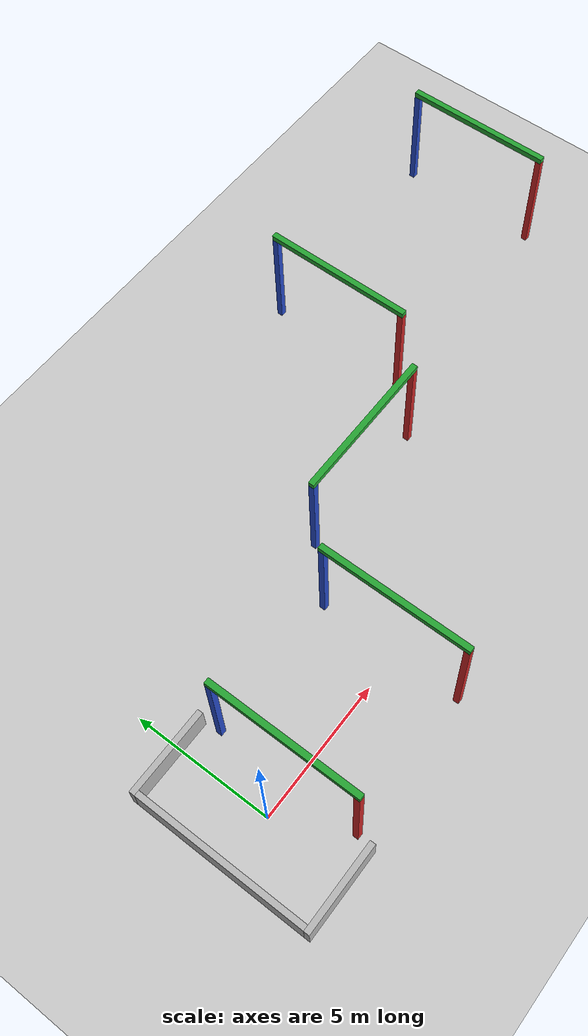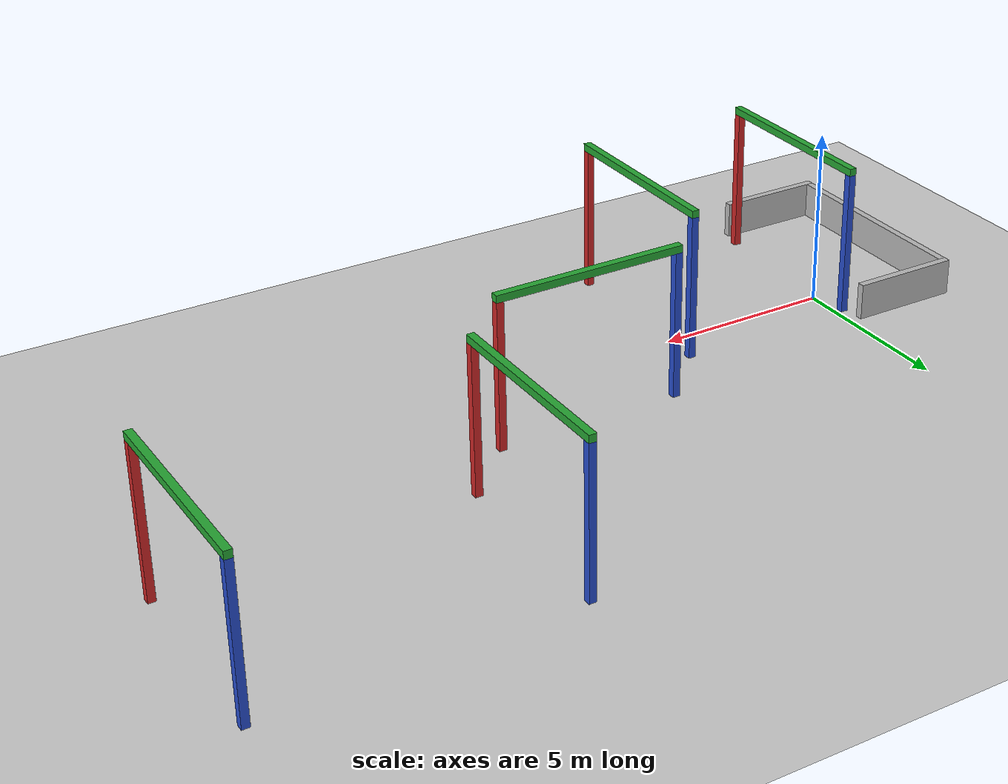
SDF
<sdf version="1.4">
 <world name="qual_task_1">
  <physics type="ode">
   <gravity>0 0 -9.81</gravity>
   <ode>
    <solver><type>quick</type><iters>50</iters><sor>1.4</sor></solver>
    <constraints>
     <cfm>0.0</cfm>
     <erp>0.2</erp>
     <contact_max_correcting_vel>100.0</contact_max_correcting_vel>
     <contact_surface_layer>0.0</contact_surface_layer>
    </constraints>
   </ode>
   <real_time_update_rate>1000</real_time_update_rate>
   <max_step_size>0.001</max_step_size>
  </physics>
  <scene><ambient>0.3 0.3 0.3 1.0</ambient></scene>
  <light type="directional" name="sun">
   <pose>0 0 100 0 0 0</pose>
   <diffuse>0.9 0.9 0.9 1</diffuse>
   <specular>0.1 0.1 0.1 1</specular>
   <attenuation>
    <range>1000</range>
    <constant>0.9</constant>
    <linear>0.01</linear>
    <quadratic>0.001</quadratic>
   </attenuation>
   <direction>-0.2 0.0 -1.0</direction>
  </light>
  <light type="point" name="light_bulb">
   <cast_shadows>false</cast_shadows>
   <pose>7.5 -7 5 0 0 0</pose>
   <diffuse>0.5 0.5 0.5 1</diffuse>
   <specular>0.0 0.0 0.0 1</specular>
   <attenuation>
    <range>80</range>
    <constant>0.9</constant>
    <linear>0.01</linear>
    <quadratic>0.001</quadratic>
   </attenuation>
  </light>
  <include><uri>model://ground_plane</uri></include>
  <model name="starting_pen">
   <pose>-2.0 0 1.5 0 0 0</pose>
   <static>true</static>
   <link name="link">
    <collision name="back_collision"><geometry><box><size>0.2 6 1.0</size></box></geometry></collision>
    <visual name="back_visual">
     <geometry><box><size>0.2 6 1.0</size></box></geometry>
     <material>
      <script><uri>file://media/materials/scripts/drc_qual.material</uri><name>DRCQual/WarningWall</name></script>
     </material>
    </visual>
    <collision name="left_collision">
     <pose>1.4 -3.1 0 0 0 0</pose>
     <geometry><box><size>3 0.2 1.0</size></box></geometry>
    </collision>
    <visual name="left_visual_lower">
     <pose>1.4 -3.1 0.0 0 0 0</pose>
     <geometry><box><size>3 0.2 1.0</size></box></geometry>
     <material>
      <script><uri>file://media/materials/scripts/drc_qual.material</uri><name>DRCQual/WarningWall</name></script>
     </material>
    </visual>
    <collision name="right_collision">
     <pose>1.4 3.1 0 0 0 0</pose>
     <geometry><box><size>3 0.2 1.0</size></box></geometry>
    </collision>
    <visual name="right_visual">
     <pose>1.4 3.1 0 0 0 0</pose>
     <geometry><box><size>3 0.2 1.0</size></box></geometry>
     <material>
      <script><uri>file://media/materials/scripts/drc_qual.material</uri><name>DRCQual/WarningWall</name></script>
     </material>
    </visual>
   </link>
  </model>
  <include><name>gate_0</name><uri>model://gate</uri><pose>1 0 3.0 0 0 0</pose></include>
  <include><name>gate_1</name><uri>model://gate</uri><pose>6 0 3.0 0 0 0</pose></include>
  <include><name>gate_2</name><uri>model://gate</uri><pose>10 4 3.0 0 0 1.5707</pose></include>
  <include><name>gate_3</name><uri>model://gate</uri><pose>14 8 3.0 0 0 0</pose></include>
  <include><name>gate_4</name><uri>model://gate</uri><pose>22 8 3.0 0 0 0</pose></include>
  <plugin filename="libVRCPlugin.so" name="vrc_plugin">
   <atlas><model_name>atlas</model_name><pin_link>utorso</pin_link></atlas>
   <drc_vehicle><model_name>golf_cart</model_name><seat_link>chassis</seat_link></drc_vehicle>
   <drc_fire_hose>
    <fire_hose_model>fire_hose</fire_hose_model>
    <coupling_link>coupling</coupling_link>
    <standpipe_model>standpipe</standpipe_model>
    <spout_link>standpipe</spout_link>
    <thread_pitch>-1000</thread_pitch>
    <coupling_relative_pose>1.17038e-05 -0.125623 0.35 -0.0412152 -1.57078 1.61199</coupling_relative_pose>
   </drc_fire_hose>
  </plugin>
  <plugin filename="libVRCScoringPlugin.so" name="vrc_scoring">
   <score_file>/tmp/qual_task_1/score.log</score_file>
  </plugin>
 </world>
</sdf>

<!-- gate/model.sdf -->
<sdf version="1.4">
  <model name="gate">
    <static>true</static>
    <pose>0 0 2.0 0 0 0</pose>
    <link name="link">
      <collision name="right_collision">
        <pose>0 -2.5 0 0 0 0</pose>
        <geometry>
          <box>
            <size>0.2 0.2 4.0</size>
          </box>
        </geometry>
      </collision>
      <visual name="right_visual">
        <pose>0 -2.5 0 0 0 0</pose>
        <geometry>
          <box>
            <size>0.2 0.2 4.0</size>
          </box>
        </geometry>
        <material>
          <script>
            <uri>model://gate/materials/scripts/gate.material</uri>
            <uri>model://gate/materials/textures</uri>
            <name>vrc/red_gate</name>
          </script>
        </material>
      </visual>

      <collision name="left_collision">
        <pose>0 2.5 0 0 0 0</pose>
        <geometry>
          <box>
            <size>0.2 0.2 4.0</size>
          </box>
        </geometry>
      </collision>
      <visual name="left_visual">
        <pose>0 2.5 0 0 0 0</pose>
        <geometry>
          <box>
            <size>0.2 0.2 4.0</size>
          </box>
        </geometry>
        <material>
          <script>
            <uri>model://gate/materials/scripts/gate.material</uri>
            <uri>model://gate/materials/textures</uri>
            <name>vrc/blue_gate</name>
          </script>
        </material>
      </visual>

      <collision name="top_collision">
        <pose>0 0 2.1 0 0 0</pose>
        <geometry>
          <box>
            <size>0.2 5.2 0.2</size>
          </box>
        </geometry>
      </collision>
      <visual name="top_visual">
        <pose>0 0 2.1 0 0 0</pose>
        <geometry>
          <box>
            <size>0.2 5.2 0.2</size>
          </box>
        </geometry>
        <material>
          <script>
            <uri>model://gate/materials/scripts/gate.material</uri>
            <uri>model://gate/materials/textures</uri>
            <name>vrc/green_gate</name>
          </script>
        </material>
      </visual>
    </link>
  </model>
</sdf>
